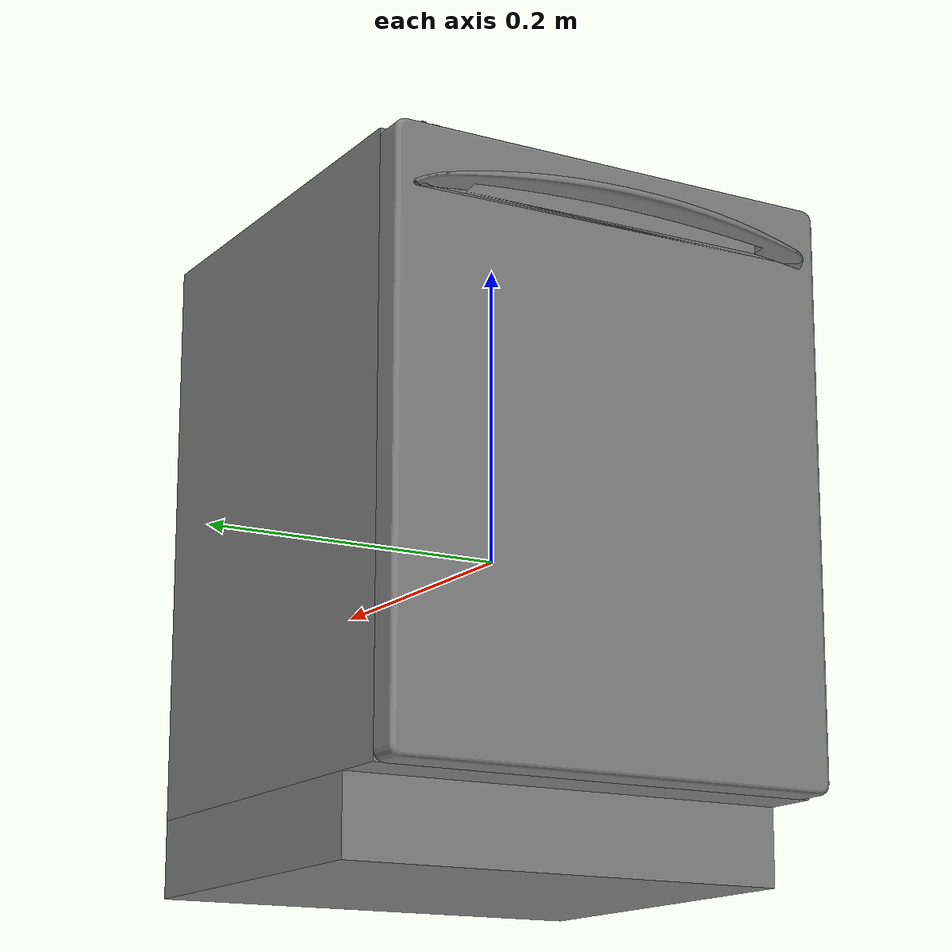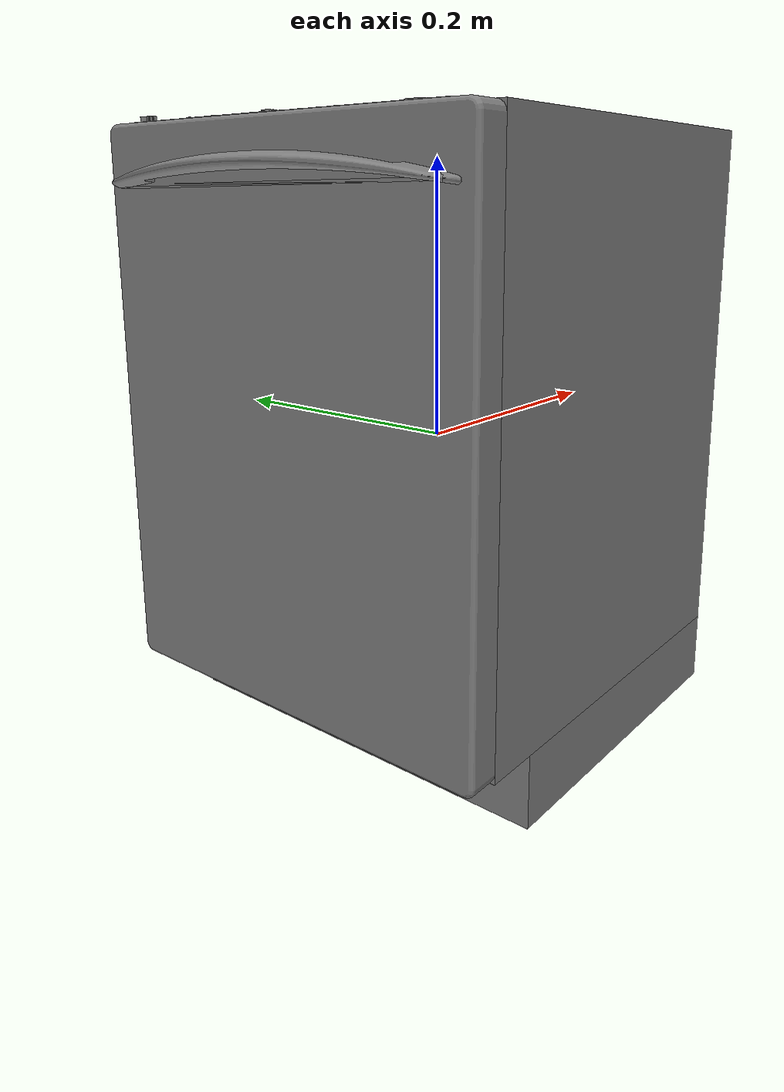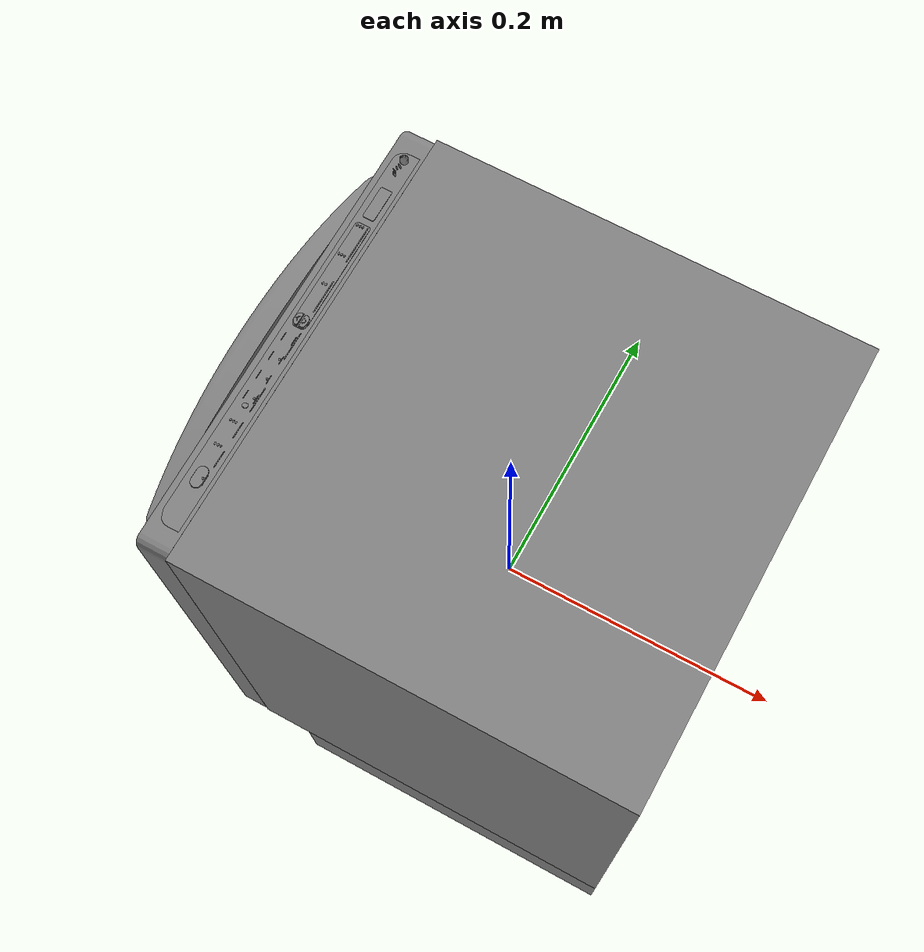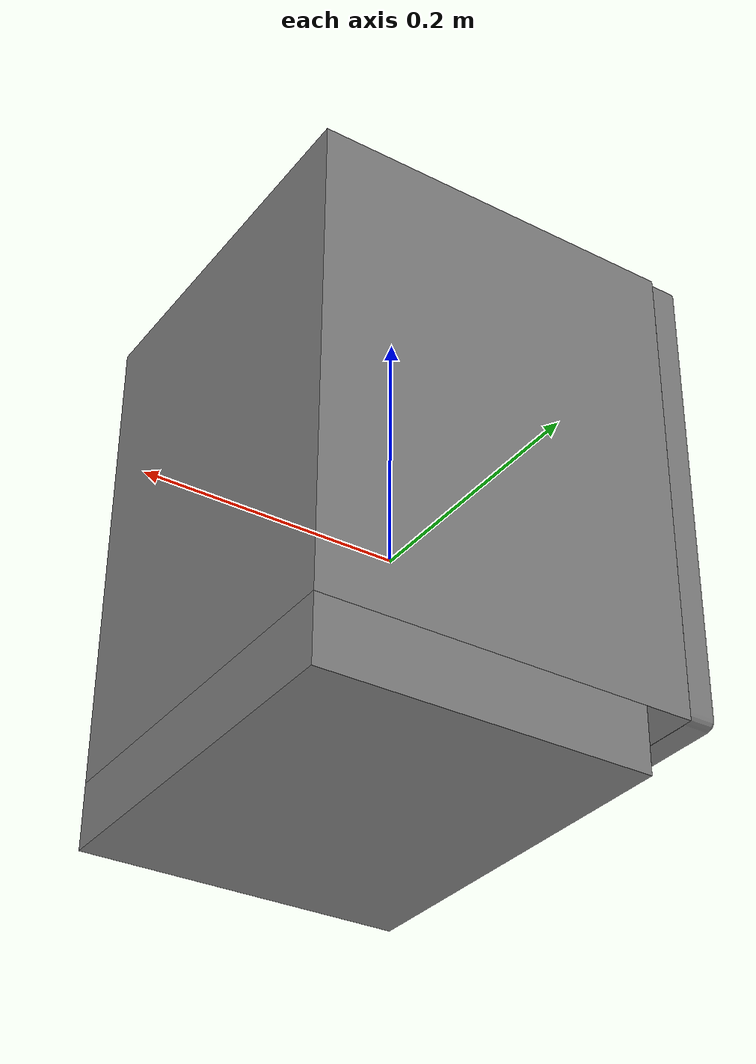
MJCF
<mujoco model="partnet_187d79cd04b2bdfddf3a1b0d597ce76e">
    <compiler angle="radian" />
    <size njmax="500" nconmax="100" />
    <option gravity="0 0 0" />
    <asset>
        <mesh name="original-7" file="original-7.stl" scale="0.3 0.3 0.3" />
        <mesh name="original-51" file="original-51.stl" scale="0.3 0.3 0.3" />
        <mesh name="original-25" file="original-25.stl" scale="0.3 0.3 0.3" />
        <mesh name="original-4" file="original-4.stl" scale="0.3 0.3 0.3" />
        <mesh name="original-37" file="original-37.stl" scale="0.3 0.3 0.3" />
        <mesh name="original-20" file="original-20.stl" scale="0.3 0.3 0.3" />
        <mesh name="original-29" file="original-29.stl" scale="0.3 0.3 0.3" />
        <mesh name="original-15" file="original-15.stl" scale="0.3 0.3 0.3" />
        <mesh name="original-8" file="original-8.stl" scale="0.3 0.3 0.3" />
        <mesh name="original-27" file="original-27.stl" scale="0.3 0.3 0.3" />
        <mesh name="original-12" file="original-12.stl" scale="0.3 0.3 0.3" />
        <mesh name="original-11" file="original-11.stl" scale="0.3 0.3 0.3" />
        <mesh name="original-48" file="original-48.stl" scale="0.3 0.3 0.3" />
        <mesh name="original-16" file="original-16.stl" scale="0.3 0.3 0.3" />
        <mesh name="original-49" file="original-49.stl" scale="0.3 0.3 0.3" />
        <mesh name="original-50" file="original-50.stl" scale="0.3 0.3 0.3" />
        <mesh name="original-58" file="original-58.stl" scale="0.3 0.3 0.3" />
        <mesh name="original-56" file="original-56.stl" scale="0.3 0.3 0.3" />
        <mesh name="original-54" file="original-54.stl" scale="0.3 0.3 0.3" />
        <mesh name="original-57" file="original-57.stl" scale="0.3 0.3 0.3" />
        <mesh name="original-55" file="original-55.stl" scale="0.3 0.3 0.3" />
        <mesh name="original-18" file="original-18.stl" scale="0.3 0.3 0.3" />
        <mesh name="original-35" file="original-35.stl" scale="0.3 0.3 0.3" />
        <mesh name="original-44" file="original-44.stl" scale="0.3 0.3 0.3" />
        <mesh name="original-31" file="original-31.stl" scale="0.3 0.3 0.3" />
        <mesh name="original-9" file="original-9.stl" scale="0.3 0.3 0.3" />
        <mesh name="original-10" file="original-10.stl" scale="0.3 0.3 0.3" />
        <mesh name="original-28" file="original-28.stl" scale="0.3 0.3 0.3" />
        <mesh name="original-32" file="original-32.stl" scale="0.3 0.3 0.3" />
        <mesh name="original-41" file="original-41.stl" scale="0.3 0.3 0.3" />
        <mesh name="original-43" file="original-43.stl" scale="0.3 0.3 0.3" />
        <mesh name="original-21" file="original-21.stl" scale="0.3 0.3 0.3" />
        <mesh name="original-34" file="original-34.stl" scale="0.3 0.3 0.3" />
        <mesh name="original-38" file="original-38.stl" scale="0.3 0.3 0.3" />
        <mesh name="original-52" file="original-52.stl" scale="0.3 0.3 0.3" />
        <mesh name="original-3" file="original-3.stl" scale="0.3 0.3 0.3" />
        <mesh name="original-42" file="original-42.stl" scale="0.3 0.3 0.3" />
        <mesh name="new-3" file="new-3.stl" scale="0.3 0.3 0.3" />
        <mesh name="original-26" file="original-26.stl" scale="0.3 0.3 0.3" />
        <mesh name="original-46" file="original-46.stl" scale="0.3 0.3 0.3" />
        <mesh name="original-14" file="original-14.stl" scale="0.3 0.3 0.3" />
        <mesh name="original-39" file="original-39.stl" scale="0.3 0.3 0.3" />
        <mesh name="original-45" file="original-45.stl" scale="0.3 0.3 0.3" />
        <mesh name="original-17" file="original-17.stl" scale="0.3 0.3 0.3" />
        <mesh name="original-47" file="original-47.stl" scale="0.3 0.3 0.3" />
        <mesh name="original-6" file="original-6.stl" scale="0.3 0.3 0.3" />
        <mesh name="original-36" file="original-36.stl" scale="0.3 0.3 0.3" />
        <mesh name="original-24" file="original-24.stl" scale="0.3 0.3 0.3" />
        <mesh name="original-22" file="original-22.stl" scale="0.3 0.3 0.3" />
        <mesh name="original-33" file="original-33.stl" scale="0.3 0.3 0.3" />
        <mesh name="original-2" file="original-2.stl" scale="0.3 0.3 0.3" />
        <mesh name="original-23" file="original-23.stl" scale="0.3 0.3 0.3" />
        <mesh name="original-30" file="original-30.stl" scale="0.3 0.3 0.3" />
        <mesh name="original-19" file="original-19.stl" scale="0.3 0.3 0.3" />
        <mesh name="original-13" file="original-13.stl" scale="0.3 0.3 0.3" />
        <mesh name="original-40" file="original-40.stl" scale="0.3 0.3 0.3" />
        <mesh name="new-2" file="new-2.stl" scale="0.3 0.3 0.3" />
        <mesh name="new-0" file="new-0.stl" scale="0.3 0.3 0.3" />
        <mesh name="new-1" file="new-1.stl" scale="0.3 0.3 0.3" />
    </asset>
    <worldbody>
        <body>
        <body name="object">
        <geom quat="0.5 0.5 -0.5 -0.5" type="mesh" group="0" mesh="new-0" contype="0" conaffinity="0" />
        <geom quat="0.5 0.5 -0.5 -0.5" type="mesh" group="0" mesh="new-1" contype="0" conaffinity="0" />
        <body name="link_0" pos="-0.1344573 -0.14837309999999998 -0.1556967" quat="0.5 0.5 -0.5 -0.5" gravcomp="1">
            <inertial pos="-0.1520169 0.18939209999999998 0.015056339999999998" quat="0.498906 0.500975 -0.501695 0.498416" mass="94.238" diaginertia="22.9843 14.2193 8.85032" />
            <joint name="joint_0" pos="0.0 0.0 0.0" axis="1 0 0" limited="true" range="0 1.5708" />
            <geom pos="-0.14837309999999998 0.1556967 -0.1344573" type="mesh" group="0" mesh="original-7" />
            <geom pos="-0.14837309999999998 0.1556967 -0.1344573" type="mesh" group="0" mesh="original-51" />
            <geom pos="-0.14837309999999998 0.1556967 -0.1344573" type="mesh" group="0" mesh="original-25" />
            <geom pos="-0.14837309999999998 0.1556967 -0.1344573" type="mesh" group="0" mesh="original-4" />
            <geom pos="-0.14837309999999998 0.1556967 -0.1344573" type="mesh" group="0" mesh="original-37" />
            <geom pos="-0.14837309999999998 0.1556967 -0.1344573" type="mesh" group="0" mesh="original-20" />
            <geom pos="-0.14837309999999998 0.1556967 -0.1344573" type="mesh" group="0" mesh="original-29" />
            <geom pos="-0.14837309999999998 0.1556967 -0.1344573" type="mesh" group="0" mesh="original-15" />
            <geom pos="-0.14837309999999998 0.1556967 -0.1344573" type="mesh" group="0" mesh="original-8" />
            <geom pos="-0.14837309999999998 0.1556967 -0.1344573" type="mesh" group="0" mesh="original-27" />
            <geom pos="-0.14837309999999998 0.1556967 -0.1344573" type="mesh" group="0" mesh="original-12" />
            <geom pos="-0.14837309999999998 0.1556967 -0.1344573" type="mesh" group="0" mesh="original-11" />
            <geom pos="-0.14837309999999998 0.1556967 -0.1344573" type="mesh" group="0" mesh="original-48" />
            <geom pos="-0.14837309999999998 0.1556967 -0.1344573" type="mesh" group="0" mesh="original-16" />
            <geom pos="-0.14837309999999998 0.1556967 -0.1344573" type="mesh" group="0" mesh="original-49" />
            <geom pos="-0.14837309999999998 0.1556967 -0.1344573" type="mesh" group="0" mesh="original-50" />
            <geom pos="-0.14837309999999998 0.1556967 -0.1344573" type="mesh" group="0" mesh="original-58" />
            <geom pos="-0.14837309999999998 0.1556967 -0.1344573" type="mesh" group="0" mesh="original-56" />
            <geom pos="-0.14837309999999998 0.1556967 -0.1344573" type="mesh" group="0" mesh="original-54" />
            <geom pos="-0.14837309999999998 0.1556967 -0.1344573" type="mesh" group="0" mesh="original-57" />
            <geom pos="-0.14837309999999998 0.1556967 -0.1344573" type="mesh" group="0" mesh="original-55" />
            <geom pos="-0.14837309999999998 0.1556967 -0.1344573" type="mesh" group="0" mesh="original-18" />
            <geom pos="-0.14837309999999998 0.1556967 -0.1344573" type="mesh" group="0" mesh="original-35" />
            <geom pos="-0.14837309999999998 0.1556967 -0.1344573" type="mesh" group="0" mesh="original-44" />
            <geom pos="-0.14837309999999998 0.1556967 -0.1344573" type="mesh" group="0" mesh="original-31" />
            <geom pos="-0.14837309999999998 0.1556967 -0.1344573" type="mesh" group="0" mesh="original-9" />
            <geom pos="-0.14837309999999998 0.1556967 -0.1344573" type="mesh" group="0" mesh="original-10" />
            <geom pos="-0.14837309999999998 0.1556967 -0.1344573" type="mesh" group="0" mesh="original-28" />
            <geom pos="-0.14837309999999998 0.1556967 -0.1344573" type="mesh" group="0" mesh="original-32" />
            <geom pos="-0.14837309999999998 0.1556967 -0.1344573" type="mesh" group="0" mesh="original-41" />
            <geom pos="-0.14837309999999998 0.1556967 -0.1344573" type="mesh" group="0" mesh="original-43" />
            <geom pos="-0.14837309999999998 0.1556967 -0.1344573" type="mesh" group="0" mesh="original-21" />
            <geom pos="-0.14837309999999998 0.1556967 -0.1344573" type="mesh" group="0" mesh="original-34" />
            <geom pos="-0.14837309999999998 0.1556967 -0.1344573" type="mesh" group="0" mesh="original-38" />
            <geom pos="-0.14837309999999998 0.1556967 -0.1344573" type="mesh" group="0" mesh="original-52" />
            <geom pos="-0.14837309999999998 0.1556967 -0.1344573" type="mesh" group="0" mesh="original-3" />
            <geom pos="-0.14837309999999998 0.1556967 -0.1344573" type="mesh" group="0" mesh="original-42" />
            <geom pos="-0.14837309999999998 0.1556967 -0.1344573" type="mesh" group="0" mesh="new-3" />
            <geom pos="-0.14837309999999998 0.1556967 -0.1344573" type="mesh" group="0" mesh="original-26" />
            <geom pos="-0.14837309999999998 0.1556967 -0.1344573" type="mesh" group="0" mesh="original-46" />
            <geom pos="-0.14837309999999998 0.1556967 -0.1344573" type="mesh" group="0" mesh="original-14" />
            <geom pos="-0.14837309999999998 0.1556967 -0.1344573" type="mesh" group="0" mesh="original-39" />
            <geom pos="-0.14837309999999998 0.1556967 -0.1344573" type="mesh" group="0" mesh="original-45" />
            <geom pos="-0.14837309999999998 0.1556967 -0.1344573" type="mesh" group="0" mesh="original-17" />
            <geom pos="-0.14837309999999998 0.1556967 -0.1344573" type="mesh" group="0" mesh="original-47" />
            <geom pos="-0.14837309999999998 0.1556967 -0.1344573" type="mesh" group="0" mesh="original-6" />
            <geom pos="-0.14837309999999998 0.1556967 -0.1344573" type="mesh" group="0" mesh="original-36" />
            <geom pos="-0.14837309999999998 0.1556967 -0.1344573" type="mesh" group="0" mesh="original-24" />
            <geom pos="-0.14837309999999998 0.1556967 -0.1344573" type="mesh" group="0" mesh="original-22" />
            <geom pos="-0.14837309999999998 0.1556967 -0.1344573" type="mesh" group="0" mesh="original-33" />
            <geom pos="-0.14837309999999998 0.1556967 -0.1344573" type="mesh" group="0" mesh="original-2" />
            <geom pos="-0.14837309999999998 0.1556967 -0.1344573" type="mesh" group="0" mesh="original-23" />
            <geom pos="-0.14837309999999998 0.1556967 -0.1344573" type="mesh" group="0" mesh="original-30" />
            <geom pos="-0.14837309999999998 0.1556967 -0.1344573" type="mesh" group="0" mesh="original-19" />
            <geom pos="-0.14837309999999998 0.1556967 -0.1344573" type="mesh" group="0" mesh="original-13" />
            <geom pos="-0.14837309999999998 0.1556967 -0.1344573" type="mesh" group="0" mesh="original-40" />
            <geom pos="-0.14837309999999998 0.1556967 -0.1344573" type="mesh" group="0" mesh="new-2" />
        </body>
    </body>
        <site name="bottom_site" pos="0 0 -0.3" rgba="0 0 0 0" size="0.005" />
        <site name="top_site" pos="0 0 0.3" rgba="0 0 0 0" size="0.005" />
        <site name="horizontal_radius_site" pos="0.3 0 0" rgba="0 0 0 0" size="0.1" />
    </body>
    </worldbody>
</mujoco>
